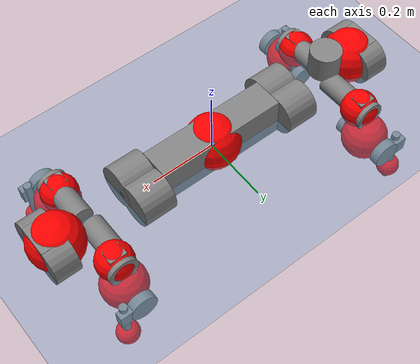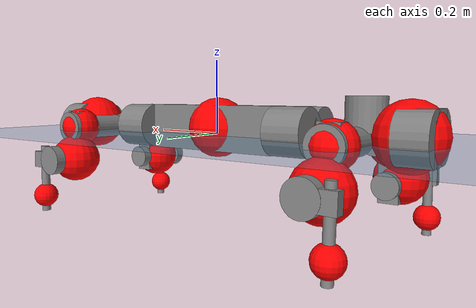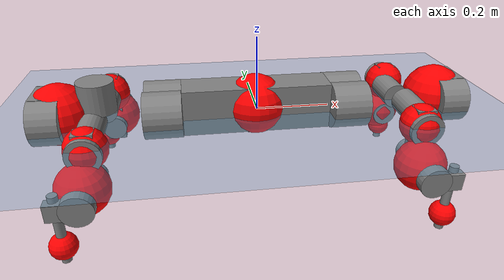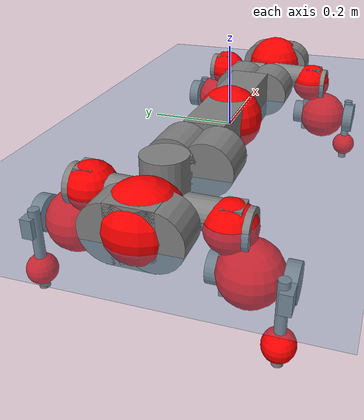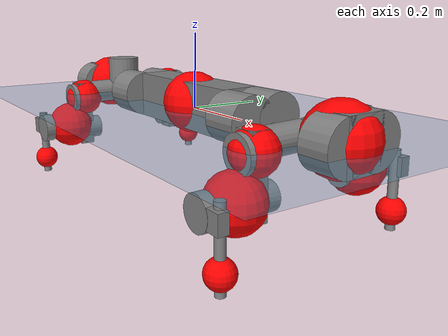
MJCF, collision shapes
<mujoco model="anymal_c">
  <compiler angle="radian" assetdir="assets" balanceinertia="true" inertiafromgeom="false"/>

  <option timestep="0.005" density="1.2" viscosity="2e-05"/>

  <size nkey="1"/>

  <visual>
    <quality shadowsize="8192"/>
    <map shadowclip="0.5"/>
  </visual>

  <default>
    <default class="/">
      <material specular="0" shininess="0.25"/>
      <geom contype="0" conaffinity="0" group="1" solref="-1000 -80"/>
      <site size="0.01 0.005 0.005" group="5"/>
      <general forcelimited="true" forcerange="-80 80" biastype="affine" gainprm="80" biasprm="0 -80 -2"/>
      <default class="anymal_c">
        <joint armature="0.01" damping="0.01" frictionloss="0.1"/>
        <default class="visual">
          <geom type="mesh" group="2"/>
          <default class="visual_zflip"/>
        </default>
        <default class="collision">
          <geom type="cylinder" group="3"/>
          <default class="foot">
            <geom size="0.03 0 0" type="sphere" condim="6" priority="1" friction="0.8 0.02 0.01" solimp="0.015 1 0.03"/>
          </default>
        </default>
      </default>
      <default class="reward_collision_sphere">
        <geom group="5" rgba="1 0 0 1"/>
      </default>
    </default>
  </default>

  <asset>
    <texture type="skybox" colorspace="auto" name="//unnamed_texture_0" builtin="gradient" rgb1="0.95 0.95 0.95" rgb2="0.95 0.95 0.95" width="100" height="600"/>
    <texture type="2d" colorspace="auto" name="texplane" builtin="checker" rgb1="0.345 0.575 0.748" rgb2="0.345 0.575 0.748" markrgb="1 1 1" width="512" height="512"/>
    <texture type="2d" colorspace="linear" name="base" file="base.png"/>
    <texture type="2d" colorspace="linear" name="top_shell" file="top_shell.png"/>
    <texture type="2d" colorspace="linear" name="bottom_shell" file="bottom_shell.png"/>
    <texture type="2d" colorspace="linear" name="remote" file="remote.png"/>
    <texture type="2d" colorspace="linear" name="hatch" file="hatch.png"/>
    <texture type="2d" colorspace="linear" name="handle" file="handle.png"/>
    <texture type="2d" colorspace="linear" name="face" file="face.png"/>
    <texture type="2d" colorspace="linear" name="battery" file="battery.png"/>
    <texture type="2d" colorspace="linear" name="lidar_cage" file="lidar_cage.png"/>
    <texture type="2d" colorspace="linear" name="depth_camera" file="depth_camera.png"/>
    <texture type="2d" colorspace="linear" name="wide_angle_camera" file="wide_angle_camera.png"/>
    <texture type="2d" colorspace="linear" name="lidar" file="lidar.png"/>
    <texture type="2d" colorspace="linear" name="drive" file="drive.png"/>
    <texture type="2d" colorspace="linear" name="hip_l" file="hip_l.png"/>
    <texture type="2d" colorspace="linear" name="shank_l" file="shank_l.png"/>
    <texture type="2d" colorspace="linear" name="foot" file="foot.png"/>
    <texture type="2d" colorspace="linear" name="thigh" file="thigh.png"/>
    <texture type="2d" colorspace="linear" name="shank_r" file="shank_r.png"/>
    <texture type="2d" colorspace="linear" name="hip_r" file="hip_r.png"/>
    <material name="MatPlane" class="/" texture="texplane" texuniform="true" texrepeat="2 2" specular="0.9" shininess="0.5"/>
    <material name="black_plastic" class="/" rgba="0.007 0.007 0.007 1"/>
    <material name="green" class="/" rgba="0.052 0.178 0.033 1"/>
    <material name="red" class="/" rgba="0.178 0.006 0.005 1"/>
    <material name="yellow" class="/" rgba="0.178 0.119 0.006 1"/>
    <material name="lwl" class="/" rgba="0.8 0.8 0.8 1"/>
    <material name="base" class="/" texture="base"/>
    <material name="top_shell" class="/" texture="top_shell"/>
    <material name="bottom_shell" class="/" texture="bottom_shell"/>
    <material name="hip_l" class="/" texture="hip_l"/>
    <material name="thigh" class="/" texture="thigh"/>
    <material name="shank_l" class="/" texture="shank_l"/>
    <material name="foot" class="/" texture="foot"/>
    <material name="hip_r" class="/" texture="hip_r"/>
    <material name="shank" class="/" texture="shank_r"/>
    <material name="hatch" class="/" texture="hatch"/>
    <material name="remote" class="/" texture="remote"/>
    <material name="handle" class="/" texture="handle"/>
    <material name="face" class="/" texture="face"/>
    <material name="depth_camera" class="/" texture="depth_camera"/>
    <material name="wide_angle_camera" class="/" texture="wide_angle_camera"/>
    <material name="battery" class="/" texture="battery"/>
    <material name="lidar_cage" class="/" texture="lidar_cage"/>
    <material name="lidar" class="/" texture="lidar"/>
    <material name="drive" class="/" texture="drive"/>
    <mesh name="base_0" class="/" file="base_0.obj"/>
    <mesh name="base_1" class="/" file="base_1.obj"/>
    <mesh name="base_2" class="/" file="base_2.obj"/>
    <mesh name="base_3" class="/" file="base_3.obj"/>
    <mesh name="base_4" class="/" file="base_4.obj"/>
    <mesh name="base_5" class="/" file="base_5.obj"/>
    <mesh name="top_shell" class="/" file="top_shell.obj"/>
    <mesh name="bottom_shell" class="/" file="bottom_shell.obj"/>
    <mesh name="remote" class="/" file="remote.obj"/>
    <mesh name="handle" class="/" file="handle.obj"/>
    <mesh name="face" class="/" file="face.obj"/>
    <mesh name="wide_angle_camera" class="/" file="wide_angle_camera.obj"/>
    <mesh name="depth_camera" class="/" file="depth_camera.obj"/>
    <mesh name="battery" class="/" file="battery.obj"/>
    <mesh name="lidar_cage" class="/" file="lidar_cage.obj"/>
    <mesh name="lidar" class="/" file="lidar.obj"/>
    <mesh name="drive" class="/" file="drive.obj"/>
    <mesh name="hip_l" class="/" file="hip_l.obj"/>
    <mesh name="thigh" class="/" file="thigh.obj"/>
    <mesh name="shank_l" class="/" file="shank_l.obj"/>
    <mesh name="foot" class="/" file="foot.obj"/>
    <mesh name="hip_r" class="/" file="hip_r.obj"/>
    <mesh name="hatch" class="/" file="hatch.obj"/>
    <mesh name="shank_r" class="/" file="shank_r.obj"/>
  </asset>

  <worldbody>
    <geom name="floor" class="/" size="100 100 0.125" type="plane" group="0" material="MatPlane"/>
    <light name="toplight_shadow" class="/" pos="0 0 5" dir="0.0990148 0.0990148 -0.990148" type="directional" ambient="0.04 0.04 0.04" diffuse="0.55 0.55 0.55" specular="0.12 0.12 0.12"/>
    <light name="toplight_fill" class="/" pos="0 0 5" dir="0.0990148 0.0990148 -0.990148" type="directional" castshadow="false" ambient="0.04 0.04 0.04" diffuse="0.3 0.3 0.3" specular="0.08 0.08 0.08"/>
    <body name="trunk" childclass="anymal_c" pos="-0.00423594 -0.000822257 0.0166443" quat="0.999969 0.00779909 0.000356796 -0.000261446">
      <inertial pos="-0.000558435 -0.0137834 0.0205067" quat="0.478387 0.499275 0.457268 0.559263" mass="5.55301" diaginertia="1.01493 0.0299332 0.00081164"/>
      <joint name="//unnamed_joint_0" type="free" armature="0" damping="0" frictionloss="0"/>
      <geom name="//unnamed_geom_1" class="visual" material="green" mesh="base_0"/>
      <geom name="//unnamed_geom_2" class="visual" material="yellow" mesh="base_1"/>
      <geom name="//unnamed_geom_3" class="visual" material="red" mesh="base_2"/>
      <geom name="//unnamed_geom_4" class="visual" material="black_plastic" mesh="base_3"/>
      <geom name="//unnamed_geom_5" class="visual" material="lwl" mesh="base_4"/>
      <geom name="//unnamed_geom_6" class="visual" material="base" mesh="base_5"/>
      <geom name="trunk_1" class="collision" size="0.198192 0.0478394 0.0615078" type="box"/>
      <geom name="trunk_2" class="collision" size="0.0615078 0.049548" pos="0.248042 0.0395083 0" quat="0.707107 0 0.707107 0"/>
      <geom name="trunk_3" class="collision" size="0.0615078 0.049548" pos="-0.248042 0.0395083 0" quat="0.707107 0 0.707107 0"/>
      <geom name="trunk_4" class="collision" size="0.0615078 0.049548" pos="0.248042 -0.0395083 0" quat="0.707107 0 0.707107 0"/>
      <geom name="trunk_5" class="collision" size="0.0615078 0.049548" pos="-0.248042 -0.0395083 0" quat="0.707107 0 0.707107 0"/>
      <geom name="//unnamed_geom_12" class="visual" material="top_shell" mesh="top_shell"/>
      <geom name="//unnamed_geom_13" class="visual" material="bottom_shell" mesh="bottom_shell"/>
      <geom name="//unnamed_geom_14" class="visual" material="remote" mesh="remote"/>
      <geom name="//unnamed_geom_15" class="visual" material="handle" mesh="handle"/>
      <geom name="//unnamed_geom_16" class="visual" pos="0.472706 0 0" quat="1 0 0 0" material="face" mesh="face"/>
      <geom name="trunk_6" class="collision" size="0.0375881 0.0478394 0.0615078" pos="0.535429 0 0" type="box"/>
      <geom name="//unnamed_geom_18" class="collision" size="0.0615078 0.0375881" pos="0.535429 0.0395083 0" quat="0.707107 0 0.707107 0"/>
      <geom name="//unnamed_geom_19" class="collision" size="0.0615078 0.0375881" pos="0.535429 -0.0395083 0" quat="0.707107 0 0.707107 0"/>
      <geom name="//unnamed_geom_20" class="visual" pos="0.526444 0 -0.00404467" quat="0.965926 0 0.258819 0" material="depth_camera" mesh="depth_camera"/>
      <geom name="//unnamed_geom_21" class="visual" pos="0.585038 0 0.00517112" material="wide_angle_camera" mesh="wide_angle_camera"/>
      <geom name="//unnamed_geom_22" class="visual_zflip" pos="-0.472706 0 0" quat="0 0 0 1" material="face" mesh="face"/>
      <geom name="trunk_7" class="collision" size="0.0375881 0.0478394 0.0615078" pos="-0.535429 0 0" quat="0 0 0 1" type="box"/>
      <geom name="//unnamed_geom_24" class="collision" size="0.0615078 0.0375881" pos="-0.535429 -0.0395083 0" quat="0 -0.707107 0 0.707107"/>
      <geom name="//unnamed_geom_25" class="collision" size="0.0615078 0.0375881" pos="-0.535429 0.0395083 0" quat="0 -0.707107 0 0.707107"/>
      <geom name="//unnamed_geom_26" class="visual" pos="-0.526444 0 -0.00404467" quat="0 -0.258819 0 0.965926" material="depth_camera" mesh="depth_camera"/>
      <geom name="//unnamed_geom_27" class="visual_zflip" pos="-0.585038 0 0.00517112" quat="0 0 0 1" material="wide_angle_camera" mesh="wide_angle_camera"/>
      <geom name="//unnamed_geom_28" class="visual" material="battery" mesh="battery"/>
      <geom name="//unnamed_geom_29" class="visual" pos="0 0.0355628 0.0160767" quat="0.683013 -0.183013 0.183013 0.683013" material="depth_camera" mesh="depth_camera"/>
      <geom name="//unnamed_geom_30" class="visual" pos="0 -0.0355628 0.0160767" quat="0.683013 0.183013 0.183013 -0.683013" material="depth_camera" mesh="depth_camera"/>
      <geom name="//unnamed_geom_31" class="visual" pos="-0.415115 0 0.0253893" quat="1 0 0 0" material="lidar_cage" mesh="lidar_cage"/>
      <geom name="trunk_8" class="collision" size="0.0478394 0.0410052" pos="-0.415115 0 0.0461152"/>
      <geom name="//unnamed_geom_33" class="visual" pos="-0.415115 -0.000226303 0.0491204" quat="0.707107 0 0 -0.707107" material="lidar" mesh="lidar"/>
      <geom name="//unnamed_geom_34" class="visual" pos="0.342013 0.0586203 3.7773e-09" quat="0.258819 0.965926 0 0" material="drive" mesh="drive"/>
      <geom name="//unnamed_geom_35" class="visual" pos="0.342013 -0.0586203 -3.7773e-09" quat="0.258819 -0.965926 0 0" material="drive" mesh="drive"/>
      <geom name="//unnamed_geom_36" class="visual" pos="-0.342013 0.0586203 -3.7773e-09" quat="0 0 0.965926 -0.258819" material="drive" mesh="drive"/>
      <geom name="//unnamed_geom_37" class="visual" pos="-0.342013 -0.0586203 3.7773e-09" quat="0 0 -0.965926 -0.258819" material="drive" mesh="drive"/>
      <geom name="//unnamed_geom_38" class="visual" pos="0.132289 0 0.0252165" quat="1 0 0 0" material="hatch" mesh="hatch"/>
      <geom name="//unnamed_geom_39" class="reward_collision_sphere" size="0.0820104"/>
      <geom name="//unnamed_geom_40" class="reward_collision_sphere" size="0.0820104" pos="0.513191 0 0"/>
      <geom name="//unnamed_geom_41" class="reward_collision_sphere" size="0.0820104" pos="-0.513191 0 0"/>
      <site name="imu" pos="0.256894 -0.0487597 0.082018" size="0.0068342"/>
      <camera name="track" pos="0 -1.12881 0" quat="0.707107 0.707107 0 0" mode="trackcom"/>
      <camera name="ego_camera" pos="0.513191 0 -0.0138173" quat="-0.5 -0.5 0.5 0.5"/>
      <body name="LF_HIP" pos="0.342574 0.0510518 -0.00833181" quat="0.259416 0.965765 -0.000509337 0.00115675">
        <inertial pos="0.0797053 -0.00904139 0.0133185" quat="-0.120568 0.743772 -0.0655532 0.654193" mass="1.00156" diaginertia="0.0107728 0.000346158 1.81637e-05"/>
        <joint name="LF_HAA" pos="0 0 0" axis="0.997404 0.0430201 -0.0577393" stiffness="0.0625857" range="-0.696485 0.287718" armature="0.00715607" damping="0.0704838" frictionloss="0.034066"/>
        <geom name="//unnamed_geom_42" class="visual" pos="0 0.000222201 -3.64964e-05" quat="0.258819 -0.965926 0 0" material="hip_l" mesh="hip_l"/>
        <geom name="//unnamed_geom_43" class="visual" pos="0.0683115 -0.0751119 -0.0417462" quat="0.183013 -0.683013 0.683013 0.183013" material="drive" mesh="drive"/>
        <geom name="//unnamed_geom_44" class="collision" size="0.034171 0.0478394" pos="0.0683114 -0.00675016 -0.00238521" quat="-0.353553 -0.612372 0.612372 -0.353553"/>
        <body name="LF_THIGH" pos="0.0818387 -0.0499312 -0.0278611" quat="0.183158 -0.683115 0.682792 0.183308">
          <inertial pos="0.0355911 -0.000990598 -0.0820504" quat="0.993943 -0.0353591 -0.060331 0.0847773" mass="1.07098" diaginertia="0.0641151 0.00203571 2.84428e-05"/>
          <joint name="LF_HFE" pos="0 0 0" axis="0.999967 -0.00546032 -0.00605988" stiffness="0.0227745" range="-2.93344 3.13953" armature="0.0104693" damping="0" frictionloss="0.06695"/>
          <geom name="//unnamed_geom_45" class="visual" pos="0.0114605 1.80591e-05 0" quat="0.707107 0 0 -0.707107" material="thigh" mesh="thigh"/>
          <geom name="//unnamed_geom_46" class="collision" size="0.0444223 0.0273368" pos="0.045617 0 0" quat="0.5 0.5 -0.5 -0.5"/>
          <geom name="//unnamed_geom_47" class="collision" size="0.0256283 0.0205026 0.0965769" pos="0.0342127 0 -0.0488144" quat="0.707107 0 0 -0.707107" type="box"/>
          <geom name="//unnamed_geom_48" class="visual" pos="0.114385 0 -0.0984481" quat="1 0 0 0" material="drive" mesh="drive"/>
          <geom name="//unnamed_geom_49" class="collision" size="0.034171 0.0478394" pos="0.0345549 0 -0.0984481" quat="0.707107 0 0.707107 0"/>
          <geom name="//unnamed_geom_50" class="reward_collision_sphere" size="0.0546736" pos="0.0285106 0 0"/>
          <body name="LF_SHANK" pos="0.107915 0.00312352 -0.0942832" quat="1 0.000296288 9.6364e-07 -0.000111704">
            <inertial pos="0.0240346 -0.0186117 -0.0275108" quat="0.993956 -0.108791 -0.000314558 -0.0147018" mass="0.190474" diaginertia="0.0240374 0.000519044 5.72508e-06"/>
            <joint name="LF_KFE" pos="0 0 0" axis="0.999981 0.00038993 -0.00612301" stiffness="0.00656092" range="-2.78901 2.92629" armature="0.00967548" damping="0.0358671" frictionloss="0.0101028"/>
            <geom name="//unnamed_geom_51" class="visual" pos="0.00373703 0.019926 0" quat="0.707107 0 0 -0.707107" material="shank_l" mesh="shank_l"/>
            <geom name="LF_kfe_act" class="collision" size="0.0410052 0.0136684" pos="0.0228085 0 0" quat="0.5 0.5 -0.5 -0.5"/>
            <geom name="//unnamed_geom_53" class="collision" size="0.039296 0.0230654 0.012985" pos="0.0228085 -0.0324527 0" quat="0.5 0.5 -0.5 -0.5" type="box"/>
            <geom name="//unnamed_geom_54" class="visual" pos="0.0148816 -0.043218 -0.116746" quat="0.382683 0 0 -0.92388" material="foot" mesh="foot"/>
            <geom name="LF_calf" class="collision" size="0.0119599 0.0965345" pos="0.0148825 -0.0496394 -0.0583728" quat="0.707107 0 0 -0.707107"/>
            <geom name="LF_foot" class="foot" size="0.0285758" pos="0.0148825 -0.0496394 -0.108973" quat="0.707107 0 0 -0.707107"/>
            <geom name="//unnamed_geom_57" class="reward_collision_sphere" size="0.068342" pos="-0.0570212 0 0"/>
            <geom name="//unnamed_geom_58" class="reward_collision_sphere" size="0.034171" pos="0.0148825 -0.0496394 -0.108973"/>
            <site name="LF_foot" class="foot" pos="0.0148825 -0.0496394 -0.108973" quat="0.707107 0 0 -0.707107" size="0.0068342"/>
          </body>
        </body>
      </body>
      <body name="RF_HIP" pos="0.352405 -0.0582768 -0.00646357" quat="0.266816 -0.963745 0.00160527 0.00121795">
        <inertial pos="0.0730476 0.008118 -0.00365655" quat="0.126721 0.624711 0.178138 0.74963" mass="0.763426" diaginertia="0.0115274 0.000313999 1.66475e-05"/>
        <joint name="RF_HAA" pos="0 0 0" axis="0.99869 0.0499033 -0.0113099" stiffness="0.0697606" range="-0.159548 0.920805" armature="0.00496751" damping="0.0644511" frictionloss="0.0291505"/>
        <geom name="//unnamed_geom_59" class="visual" pos="0 -0.0002222 -3.64963e-05" quat="0.258819 0.965926 0 0" material="hip_r" mesh="hip_r"/>
        <geom name="//unnamed_geom_60" class="visual" pos="0.0683114 0.0751119 -0.0417462" quat="0.183013 0.683013 0.683013 -0.183013" material="drive" mesh="drive"/>
        <geom name="//unnamed_geom_61" class="collision" size="0.034171 0.0478394" pos="0.0683114 0.00675016 -0.00238521" quat="-0.353553 0.612372 0.612372 0.353553"/>
        <body name="RF_THIGH" pos="0.0668064 0.0516967 -0.0114096" quat="0.187002 0.681159 0.683549 -0.183881">
          <inertial pos="0.0445773 -0.00142356 -0.0774833" quat="0.989079 -0.0181065 -0.0843 0.119531" mass="0.818905" diaginertia="0.0565237 0.00199931 1.82489e-05"/>
          <joint name="RF_HFE" pos="0 0 0" axis="0.999989 -0.00311143 0.00345862" range="-3.11722 3.35089" armature="0.0103582" damping="0.0901229" frictionloss="0.113924"/>
          <geom name="//unnamed_geom_62" class="visual" pos="0.0114605 1.80591e-05 0" quat="0.707107 0 0 -0.707107" material="thigh" mesh="thigh"/>
          <geom name="//unnamed_geom_63" class="collision" size="0.0444223 0.0273368" pos="0.045617 0 0" quat="0.5 0.5 0.5 0.5"/>
          <geom name="//unnamed_geom_64" class="collision" size="0.0256283 0.0205026 0.0965769" pos="0.0342127 0 -0.0488144" quat="0.707107 0 0 0.707107" type="box"/>
          <geom name="//unnamed_geom_65" class="visual" pos="0.114385 0 -0.0984481" quat="1 0 0 0" material="drive" mesh="drive"/>
          <geom name="//unnamed_geom_66" class="collision" size="0.034171 0.0478394" pos="0.0345549 0 -0.0984481" quat="0.707107 0 0.707107 0"/>
          <geom name="//unnamed_geom_67" class="reward_collision_sphere" size="0.0546736" pos="0.0285106 0 0"/>
          <body name="RF_SHANK" pos="0.13075 -0.0032292 -0.0983407" quat="0.999996 -0.00143229 0.00194428 0.00146759">
            <inertial pos="0.0126813 0.0498561 -0.0412669" quat="0.98907 0.130092 -0.0575824 -0.0387429" mass="0.237521" diaginertia="0.0242403 0.000515514 7.4929e-06"/>
            <joint name="RF_KFE" pos="0 0 0" axis="0.999996 -0.00279053 -0.000732772" stiffness="0.0292242" range="-3.09689 3.22426" armature="0.00782196" damping="0.0643879" frictionloss="0.101054"/>
            <geom name="//unnamed_geom_68" class="visual" pos="0.00373701 -0.019926 0" quat="0.707107 0 0 0.707107" material="shank" mesh="shank_r"/>
            <geom name="RF_kfe_act" class="collision" size="0.0410052 0.0136684" pos="0.0228085 0 0" quat="0.5 0.5 0.5 0.5"/>
            <geom name="//unnamed_geom_70" class="collision" size="0.039296 0.0230654 0.012985" pos="0.0228085 0.0324527 0" quat="0.5 0.5 0.5 0.5" type="box"/>
            <geom name="//unnamed_geom_71" class="visual" pos="0.0148834 0.043218 -0.116746" quat="0.382683 0 0 0.92388" material="foot" mesh="foot"/>
            <geom name="RF_calf" class="collision" size="0.0119599 0.0965345" pos="0.0148825 0.0496394 -0.0583728" quat="0.707107 0 0 0.707107"/>
            <geom name="RF_foot" class="foot" size="0.0320591" pos="0.0148825 0.0496394 -0.108973" quat="0.707107 0 0 0.707107"/>
            <geom name="//unnamed_geom_74" class="reward_collision_sphere" size="0.068342" pos="-0.0570212 0 0"/>
            <geom name="//unnamed_geom_75" class="reward_collision_sphere" size="0.034171" pos="0.0148825 0.0496394 -0.108973"/>
            <site name="RF_foot" class="foot" pos="0.0148825 0.0496394 -0.108973" quat="0.707107 0 0 0.707107" size="0.0068342"/>
          </body>
        </body>
      </body>
      <body name="LH_HIP" pos="-0.340212 0.070632 -0.0121843" quat="0.00345755 -0.000327574 0.966171 -0.25788">
        <inertial pos="0.0718998 0.0237307 0.0138525" quat="0.110796 0.694395 0.0985947 0.704144" mass="1.05472" diaginertia="0.014324 0.000285643 2.133e-05"/>
        <joint name="LH_HAA" pos="0 0 0" axis="0.997393 -0.0270407 -0.0668981" range="-0.199012 0.412182" armature="0.00203322" damping="0.00105713" frictionloss="0.0694628"/>
        <geom name="//unnamed_geom_76" class="visual" pos="0 -0.0002222 -3.64963e-05" quat="-0.258819 -0.965926 0 0" material="hip_r" mesh="hip_r"/>
        <geom name="//unnamed_geom_77" class="visual" pos="0.0683114 0.0751119 -0.0417462" quat="0.183013 0.683013 0.683013 -0.183013" material="drive" mesh="drive"/>
        <geom name="//unnamed_geom_78" class="collision" size="0.034171 0.0478394" pos="0.0683114 0.00675016 -0.00238521" quat="-0.353553 0.612372 0.612372 0.353553"/>
        <body name="LH_THIGH" pos="0.0665206 0.055366 -0.0307543" quat="0.188133 0.683708 0.681808 -0.179684">
          <inertial pos="0.0177283 0.012574 -0.0676215" quat="0.992751 -0.00448144 -0.0824442 0.0873382" mass="0.786036" diaginertia="0.0364357 0.00125336 1.35827e-05"/>
          <joint name="LH_HFE" pos="0 0 0" axis="0.99627 0.0838247 -0.0204748" range="-2.91196 3.08516" armature="0.00520801" damping="0.0926727" frictionloss="0.0372352"/>
          <geom name="//unnamed_geom_79" class="visual" pos="0.0114605 1.80591e-05 0" quat="0.707107 0 0 -0.707107" material="thigh" mesh="thigh"/>
          <geom name="//unnamed_geom_80" class="collision" size="0.0444223 0.0273368" pos="0.045617 0 0" quat="0.5 0.5 -0.5 -0.5"/>
          <geom name="//unnamed_geom_81" class="collision" size="0.0256283 0.0205026 0.0965769" pos="0.0342127 0 -0.0488144" quat="0.707107 0 0 -0.707107" type="box"/>
          <geom name="//unnamed_geom_82" class="visual" pos="0.114385 0 -0.0984481" quat="1 0 0 0" material="drive" mesh="drive"/>
          <geom name="//unnamed_geom_83" class="collision" size="0.034171 0.0478394" pos="0.0345549 0 -0.0984481" quat="0.707107 0 0.707107 0"/>
          <geom name="//unnamed_geom_84" class="reward_collision_sphere" size="0.0546736" pos="0.0285106 0 0"/>
          <body name="LH_SHANK" pos="0.125295 -0.00139913 -0.0872553" quat="0.999978 0.00138415 0.00394197 -0.00514422">
            <inertial pos="0.0225191 0.0225185 -0.0109559" quat="0.998869 0.045852 0.0125608 0.000548418" mass="0.209477" diaginertia="0.0226041 0.000685665 5.65428e-06"/>
            <joint name="LH_KFE" pos="0 0 0" axis="0.999989 0.000470349 0.00471328" stiffness="0.0249623" range="-3.23974 3.49525" armature="0.00201387" damping="0.0870154" frictionloss="0.0695631"/>
            <geom name="//unnamed_geom_85" class="visual" pos="0.00373701 -0.019926 0" quat="-0.707107 0 0 -0.707107" material="shank" mesh="shank_r"/>
            <geom name="LH_kfe_act" class="collision" size="0.0410052 0.0136684" pos="0.0228085 0 0" quat="0.5 0.5 -0.5 -0.5"/>
            <geom name="//unnamed_geom_87" class="collision" size="0.039296 0.0230654 0.012985" pos="0.0228085 0.0324527 0" quat="0.5 0.5 -0.5 -0.5" type="box"/>
            <geom name="//unnamed_geom_88" class="visual" pos="0.0148834 0.043218 -0.116746" quat="-0.382683 0 0 -0.92388" material="foot" mesh="foot"/>
            <geom name="LH_calf" class="collision" size="0.0119599 0.0965345" pos="0.0148825 0.0496394 -0.0583728" quat="0.707107 0 0 -0.707107"/>
            <geom name="LH_foot" class="foot" size="0.0142585" pos="0.0148825 0.0496394 -0.108973" quat="0.707107 0 0 -0.707107"/>
            <geom name="//unnamed_geom_91" class="reward_collision_sphere" size="0.068342" pos="-0.0570212 0 0"/>
            <geom name="//unnamed_geom_92" class="reward_collision_sphere" size="0.034171" pos="0.0148825 0.0496394 -0.108973"/>
            <site name="LH_foot" class="foot" pos="0.0148825 0.0496394 -0.108973" quat="0.707107 0 0 -0.707107" size="0.0068342"/>
          </body>
        </body>
      </body>
      <body name="RH_HIP" pos="-0.359617 -0.0620994 -0.0148623" quat="-0.000465118 0.000268884 -0.965785 -0.259342">
        <inertial pos="0.0782169 0.00226591 -0.00262314" quat="-0.15118 0.738936 -0.0737854 0.652437" mass="0.860028" diaginertia="0.00716562 0.000217927 1.1203e-05"/>
        <joint name="RH_HAA" pos="0 0 0" axis="0.996067 -0.088014 0.0102491" range="-0.534989 0.506401" armature="0.00709302" damping="0.0168253" frictionloss="0.00848932"/>
        <geom name="//unnamed_geom_93" class="visual" pos="0 0.000222201 -3.64964e-05" quat="-0.258819 0.965926 0 0" material="hip_l" mesh="hip_l"/>
        <geom name="//unnamed_geom_94" class="visual" pos="0.0683115 -0.0751119 -0.0417462" quat="-0.183013 0.683013 -0.683013 -0.183013" material="drive" mesh="drive"/>
        <geom name="//unnamed_geom_95" class="collision" size="0.034171 0.0478394" pos="0.0683114 -0.00675016 -0.00238521" quat="0.353553 0.612372 -0.612372 0.353553"/>
        <body name="RH_THIGH" pos="0.072428 -0.0480168 -0.00823868" quat="-0.181216 0.682636 -0.683641 -0.183858">
          <inertial pos="0.0264334 0.0101045 -0.0699275" quat="0.993835 -0.0541619 -0.0811372 0.0526899" mass="1.29855" diaginertia="0.0521721 0.00189495 2.07327e-05"/>
          <joint name="RH_HFE" pos="0 0 0" axis="0.999008 0.0100723 0.0433781" range="-3.16231 3.40208" armature="0.0070816" damping="0.0413842" frictionloss="0.0906414"/>
          <geom name="//unnamed_geom_96" class="visual" pos="0.0114605 1.80591e-05 0" quat="0.707107 0 0 -0.707107" material="thigh" mesh="thigh"/>
          <geom name="//unnamed_geom_97" class="collision" size="0.0444223 0.0273368" pos="0.045617 0 0" quat="0.5 0.5 0.5 0.5"/>
          <geom name="//unnamed_geom_98" class="collision" size="0.0256283 0.0205026 0.0965769" pos="0.0342127 0 -0.0488144" quat="0.707107 0 0 0.707107" type="box"/>
          <geom name="//unnamed_geom_99" class="visual" pos="0.114385 0 -0.0984481" quat="1 0 0 0" material="drive" mesh="drive"/>
          <geom name="//unnamed_geom_100" class="collision" size="0.034171 0.0478394" pos="0.0345549 0 -0.0984481" quat="0.707107 0 0.707107 0"/>
          <geom name="//unnamed_geom_101" class="reward_collision_sphere" size="0.0546736" pos="0.0285106 0 0"/>
          <body name="RH_SHANK" pos="0.130137 -0.0129305 -0.0858556" quat="0.99996 -0.00551191 0.00530977 0.00454102">
            <inertial pos="-0.00112954 -0.0347874 -0.0282293" quat="0.987851 -0.117336 -0.00929054 -0.101468" mass="0.173048" diaginertia="0.0179491 0.000399321 5.68086e-06"/>
            <joint name="RH_KFE" pos="0 0 0" axis="0.996334 0.0360426 0.077589" stiffness="0.0787289" range="-3.43057 3.26686" armature="0.00643878" damping="0.0822554" frictionloss="0.0911452"/>
            <geom name="//unnamed_geom_102" class="visual" pos="0.00373703 0.019926 0" quat="0.707107 0 0 -0.707107" material="shank_l" mesh="shank_l"/>
            <geom name="RH_kfe_act" class="collision" size="0.0410052 0.0136684" pos="0.0228085 0 0" quat="0.5 0.5 0.5 0.5"/>
            <geom name="//unnamed_geom_104" class="collision" size="0.039296 0.0230654 0.012985" pos="0.0228085 -0.0324527 0" quat="0.5 0.5 0.5 0.5" type="box"/>
            <geom name="//unnamed_geom_105" class="visual" pos="0.0148816 -0.043218 -0.116746" quat="0.382683 0 0 -0.92388" material="foot" mesh="foot"/>
            <geom name="RH_calf" class="collision" size="0.0119599 0.0965345" pos="0.0148825 -0.0496394 -0.0583728" quat="0.707107 0 0 0.707107"/>
            <geom name="RH_foot" class="foot" size="0.0255744" pos="0.0148825 -0.0496394 -0.108973" quat="0.707107 0 0 0.707107"/>
            <geom name="//unnamed_geom_108" class="reward_collision_sphere" size="0.068342" pos="-0.0570212 0 0"/>
            <geom name="//unnamed_geom_109" class="reward_collision_sphere" size="0.034171" pos="0.0148825 -0.0496394 -0.108973"/>
            <site name="RH_foot" class="foot" pos="0.0148825 -0.0496394 -0.108973" quat="0.707107 0 0 0.707107" size="0.0068342"/>
          </body>
        </body>
      </body>
    </body>
  </worldbody>

  <contact>
    <pair class="/" geom1="floor" geom2="LF_foot" name="//unnamed_contact_0"/>
    <pair class="/" geom1="floor" geom2="RF_foot" name="//unnamed_contact_1"/>
    <pair class="/" geom1="floor" geom2="LH_foot" name="//unnamed_contact_2"/>
    <pair class="/" geom1="floor" geom2="RH_foot" name="//unnamed_contact_3"/>
  </contact>

  <actuator>
    <general name="LF_HAA" class="/" joint="LF_HAA" forcerange="-58.0016 58.0016" gainprm="47.1475" biasprm="0 -47.1475 -1.60248"/>
    <general name="LF_HFE" class="/" joint="LF_HFE" forcerange="-43.976 43.976" gainprm="47.1475" biasprm="0 -47.1475 -1.60248"/>
    <general name="LF_KFE" class="/" joint="LF_KFE" forcerange="-33.1418 33.1418" gainprm="47.1475" biasprm="0 -47.1475 -1.60248"/>
    <general name="RF_HAA" class="/" joint="RF_HAA" forcerange="-64.7364 64.7364" gainprm="47.1475" biasprm="0 -47.1475 -1.60248"/>
    <general name="RF_HFE" class="/" joint="RF_HFE" forcerange="-33.765 33.765" gainprm="47.1475" biasprm="0 -47.1475 -1.60248"/>
    <general name="RF_KFE" class="/" joint="RF_KFE" forcerange="-56.9977 56.9977" gainprm="47.1475" biasprm="0 -47.1475 -1.60248"/>
    <general name="LH_HAA" class="/" joint="LH_HAA" forcerange="-59.0113 59.0113" gainprm="47.1475" biasprm="0 -47.1475 -1.60248"/>
    <general name="LH_HFE" class="/" joint="LH_HFE" forcerange="-88.5014 88.5014" gainprm="47.1475" biasprm="0 -47.1475 -1.60248"/>
    <general name="LH_KFE" class="/" joint="LH_KFE" forcerange="-23.6925 23.6925" gainprm="47.1475" biasprm="0 -47.1475 -1.60248"/>
    <general name="RH_HAA" class="/" joint="RH_HAA" forcerange="-56.7101 56.7101" gainprm="47.1475" biasprm="0 -47.1475 -1.60248"/>
    <general name="RH_HFE" class="/" joint="RH_HFE" forcerange="-70.601 70.601" gainprm="47.1475" biasprm="0 -47.1475 -1.60248"/>
    <general name="RH_KFE" class="/" joint="RH_KFE" forcerange="-32.2973 32.2973" gainprm="47.1475" biasprm="0 -47.1475 -1.60248"/>
  </actuator>

  <sensor>
    <gyro site="imu" name="imu_angular_velocity"/>
    <velocimeter site="imu" name="imu_linear_velocity"/>
    <framelinvel objtype="site" objname="LF_foot" name="LF_foot_global_linear_velocity"/>
    <framelinvel objtype="site" objname="RF_foot" name="RF_foot_global_linear_velocity"/>
    <framelinvel objtype="site" objname="LH_foot" name="LH_foot_global_linear_velocity"/>
    <framelinvel objtype="site" objname="RH_foot" name="RH_foot_global_linear_velocity"/>
  </sensor>

  <keyframe>
    <key name="home" qpos="0 0 0.55 1 0 0 0 0 0.4 -0.8 0 -0.4 0.8 0 -0.4 0.8 0 0.4 -0.8"/>
  </keyframe>
</mujoco>
